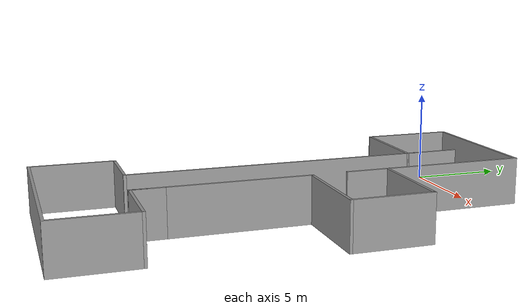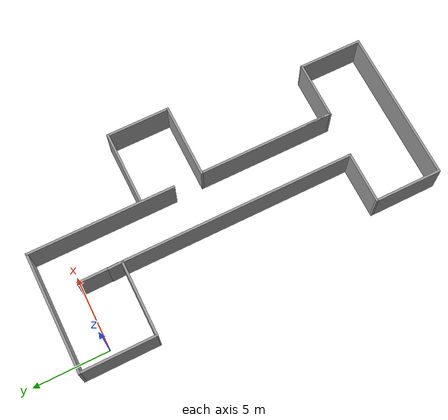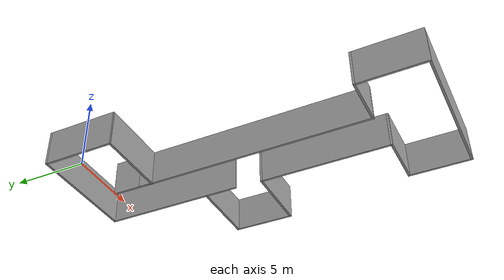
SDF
<?xml version='1.0'?>
<sdf version='1.7'>
  <model name='FBE4'>
    <pose>5.41632 -10.2467 0 0 -0 0</pose>
    <link name='Wall_28'>
      <collision name='Wall_28_Collision'>
        <geometry>
          <box>
            <size>8 0.15 2.5</size>
          </box>
        </geometry>
        <pose>0 0 1.25 0 -0 0</pose>
      </collision>
      <visual name='Wall_28_Visual'>
        <pose>0 0 1.25 0 -0 0</pose>
        <geometry>
          <box>
            <size>8 0.15 2.5</size>
          </box>
        </geometry>
        <material>
          <script>
            <uri>file://media/materials/scripts/gazebo.material</uri>
            <name>Gazebo/Grey</name>
          </script>
          <ambient>1 1 1 1</ambient>
        </material>
        <meta>
          <layer>0</layer>
        </meta>
      </visual>
      <pose>-2.46372 12.2872 0 0 -0 0</pose>
    </link>
    <link name='Wall_30'>
      <collision name='Wall_30_Collision'>
        <geometry>
          <box>
            <size>5 0.15 2.5</size>
          </box>
        </geometry>
        <pose>0 0 1.25 0 -0 0</pose>
      </collision>
      <visual name='Wall_30_Visual'>
        <pose>0 0 1.25 0 -0 0</pose>
        <geometry>
          <box>
            <size>5 0.15 2.5</size>
          </box>
        </geometry>
        <material>
          <script>
            <uri>file://media/materials/scripts/gazebo.material</uri>
            <name>Gazebo/Grey</name>
          </script>
          <ambient>1 1 1 1</ambient>
        </material>
        <meta>
          <layer>0</layer>
        </meta>
      </visual>
      <pose>-6.38872 9.86224 0 0 -0 -1.5708</pose>
    </link>
    <link name='Wall_32'>
      <collision name='Wall_32_Collision'>
        <geometry>
          <box>
            <size>2.98753 0.15 2.5</size>
          </box>
        </geometry>
        <pose>0 0 1.25 0 -0 0</pose>
      </collision>
      <visual name='Wall_32_Visual'>
        <pose>0 0 1.25 0 -0 0</pose>
        <geometry>
          <box>
            <size>2.98753 0.15 2.5</size>
          </box>
        </geometry>
        <material>
          <script>
            <uri>file://media/materials/scripts/gazebo.material</uri>
            <name>Gazebo/Grey</name>
          </script>
          <ambient>1 1 1 1</ambient>
        </material>
        <meta>
          <layer>0</layer>
        </meta>
      </visual>
      <pose>-1.48984 8.83152 0 0 -0 -1.5624</pose>
    </link>
    <link name='Wall_34'>
      <collision name='Wall_34_Collision'>
        <geometry>
          <box>
            <size>5.06085 0.15 2.5</size>
          </box>
        </geometry>
        <pose>0 0 1.25 0 -0 0</pose>
      </collision>
      <visual name='Wall_34_Visual'>
        <pose>0 0 1.25 0 -0 0</pose>
        <geometry>
          <box>
            <size>5.06085 0.15 2.5</size>
          </box>
        </geometry>
        <material>
          <script>
            <uri>file://media/materials/scripts/gazebo.material</uri>
            <name>Gazebo/Grey</name>
          </script>
          <ambient>1 1 1 1</ambient>
        </material>
        <meta>
          <layer>0</layer>
        </meta>
      </visual>
      <pose>-3.93332 7.425 0 0 -0 -0.004982</pose>
    </link>
    <link name='Wall_35'>
      <collision name='Wall_35_Collision'>
        <geometry>
          <box>
            <size>1.02491 0.15 2.5</size>
          </box>
        </geometry>
        <pose>0 0 1.25 0 -0 0</pose>
      </collision>
      <visual name='Wall_35_Visual'>
        <pose>0 0 1.25 0 -0 0</pose>
        <geometry>
          <box>
            <size>1.02491 0.15 2.5</size>
          </box>
        </geometry>
        <material>
          <script>
            <uri>file://media/materials/scripts/gazebo.material</uri>
            <name>Gazebo/Grey</name>
          </script>
          <ambient>1 1 1 1</ambient>
        </material>
        <meta>
          <layer>0</layer>
        </meta>
      </visual>
      <pose>-1.48984 7.85006 0 0 -0 1.59804</pose>
    </link>
    <link name='Wall_38'>
      <collision name='Wall_38_Collision'>
        <geometry>
          <box>
            <size>15.5 0.15 2.5</size>
          </box>
        </geometry>
        <pose>0 0 1.25 0 -0 0</pose>
      </collision>
      <visual name='Wall_38_Visual'>
        <pose>0 0 1.25 0 -0 0</pose>
        <geometry>
          <box>
            <size>15.5 0.15 2.5</size>
          </box>
        </geometry>
        <material>
          <script>
            <uri>file://media/materials/scripts/gazebo.material</uri>
            <name>Gazebo/Grey</name>
          </script>
          <ambient>1 1 1 1</ambient>
        </material>
        <meta>
          <layer>0</layer>
        </meta>
      </visual>
      <pose>-1.47792 -0.262234 0 0 -0 -1.5708</pose>
    </link>
    <link name='Wall_40'>
      <collision name='Wall_40_Collision'>
        <geometry>
          <box>
            <size>9.75 0.15 2.5</size>
          </box>
        </geometry>
        <pose>0 0 1.25 0 -0 0</pose>
      </collision>
      <visual name='Wall_40_Visual'>
        <pose>0 0 1.25 0 -0 0</pose>
        <geometry>
          <box>
            <size>9.75 0.15 2.5</size>
          </box>
        </geometry>
        <material>
          <script>
            <uri>file://media/materials/scripts/gazebo.material</uri>
            <name>Gazebo/Grey</name>
          </script>
          <ambient>1 1 1 1</ambient>
        </material>
        <meta>
          <layer>0</layer>
        </meta>
      </visual>
      <pose>1.46128 7.48724 0 0 -0 -1.5708</pose>
    </link>
    <link name='Wall_42'>
      <collision name='Wall_42_Collision'>
        <geometry>
          <box>
            <size>5 0.15 2.5</size>
          </box>
        </geometry>
        <pose>0 0 1.25 0 -0 0</pose>
      </collision>
      <visual name='Wall_42_Visual'>
        <pose>0 0 1.25 0 -0 0</pose>
        <geometry>
          <box>
            <size>5 0.15 2.5</size>
          </box>
        </geometry>
        <material>
          <script>
            <uri>file://media/materials/scripts/gazebo.material</uri>
            <name>Gazebo/Grey</name>
          </script>
          <ambient>1 1 1 1</ambient>
        </material>
        <meta>
          <layer>0</layer>
        </meta>
      </visual>
      <pose>3.96409 4.85804 0 0 -0 0</pose>
    </link>
    <link name='Wall_44'>
      <collision name='Wall_44_Collision'>
        <geometry>
          <box>
            <size>4.25 0.15 2.5</size>
          </box>
        </geometry>
        <pose>0 0 1.25 0 -0 0</pose>
      </collision>
      <visual name='Wall_44_Visual'>
        <pose>0 0 1.25 0 -0 0</pose>
        <geometry>
          <box>
            <size>4.25 0.15 2.5</size>
          </box>
        </geometry>
        <material>
          <script>
            <uri>file://media/materials/scripts/gazebo.material</uri>
            <name>Gazebo/Grey</name>
          </script>
          <ambient>1 1 1 1</ambient>
        </material>
        <meta>
          <layer>0</layer>
        </meta>
      </visual>
      <pose>6.38909 2.80804 0 0 -0 -1.5708</pose>
    </link>
    <link name='Wall_45'>
      <collision name='Wall_45_Collision'>
        <geometry>
          <box>
            <size>5 0.15 2.5</size>
          </box>
        </geometry>
        <pose>0 0 1.25 0 -0 0</pose>
      </collision>
      <visual name='Wall_45_Visual'>
        <pose>0 0 1.25 0 -0 0</pose>
        <geometry>
          <box>
            <size>5 0.15 2.5</size>
          </box>
        </geometry>
        <material>
          <script>
            <uri>file://media/materials/scripts/gazebo.material</uri>
            <name>Gazebo/Grey</name>
          </script>
          <ambient>1 1 1 1</ambient>
        </material>
        <meta>
          <layer>0</layer>
        </meta>
      </visual>
      <pose>3.96409 0.758044 0 0 -0 3.14159</pose>
    </link>
    <link name='Wall_46'>
      <collision name='Wall_46_Collision'>
        <geometry>
          <box>
            <size>9.08137 0.15 2.5</size>
          </box>
        </geometry>
        <pose>0 0 1.25 0 -0 0</pose>
      </collision>
      <visual name='Wall_46_Visual'>
        <pose>0 0 1.25 0 -0 0</pose>
        <geometry>
          <box>
            <size>9.08137 0.15 2.5</size>
          </box>
        </geometry>
        <material>
          <script>
            <uri>file://media/materials/scripts/gazebo.material</uri>
            <name>Gazebo/Grey</name>
          </script>
          <ambient>1 1 1 1</ambient>
        </material>
        <meta>
          <layer>0</layer>
        </meta>
      </visual>
      <pose>1.53909 -3.70764 0 0 -0 -1.5708</pose>
    </link>
    <link name='Wall_81'>
      <collision name='Wall_81_Collision'>
        <geometry>
          <box>
            <size>3.5 0.15 2.5</size>
          </box>
        </geometry>
        <pose>0 0 1.25 0 -0 0</pose>
      </collision>
      <visual name='Wall_81_Visual'>
        <pose>0 0 1.25 0 -0 0</pose>
        <geometry>
          <box>
            <size>3.5 0.15 2.5</size>
          </box>
        </geometry>
        <material>
          <script>
            <uri>file://media/materials/scripts/gazebo.material</uri>
            <name>Gazebo/Grey</name>
          </script>
          <ambient>1 1 1 1</ambient>
        </material>
        <meta>
          <layer>0</layer>
        </meta>
      </visual>
      <pose>-3.15293 -7.93723 0 0 -0 3.14159</pose>
    </link>
    <link name='Wall_82'>
      <collision name='Wall_82_Collision'>
        <geometry>
          <box>
            <size>4.5 0.15 2.5</size>
          </box>
        </geometry>
        <pose>0 0 1.25 0 -0 0</pose>
      </collision>
      <visual name='Wall_82_Visual'>
        <pose>0 0 1.25 0 -0 0</pose>
        <geometry>
          <box>
            <size>4.5 0.15 2.5</size>
          </box>
        </geometry>
        <material>
          <script>
            <uri>file://media/materials/scripts/gazebo.material</uri>
            <name>Gazebo/Grey</name>
          </script>
          <ambient>1 1 1 1</ambient>
        </material>
        <meta>
          <layer>0</layer>
        </meta>
      </visual>
      <pose>-4.82792 -10.1122 0 0 -0 -1.5708</pose>
    </link>
    <link name='Wall_83'>
      <collision name='Wall_83_Collision'>
        <geometry>
          <box>
            <size>10.25 0.15 2.5</size>
          </box>
        </geometry>
        <pose>0 0 1.25 0 -0 0</pose>
      </collision>
      <visual name='Wall_83_Visual'>
        <pose>0 0 1.25 0 -0 0</pose>
        <geometry>
          <box>
            <size>10.25 0.15 2.5</size>
          </box>
        </geometry>
        <material>
          <script>
            <uri>file://media/materials/scripts/gazebo.material</uri>
            <name>Gazebo/Grey</name>
          </script>
          <ambient>1 1 1 1</ambient>
        </material>
        <meta>
          <layer>0</layer>
        </meta>
      </visual>
      <pose>0.222075 -12.2872 0 0 -0 0</pose>
    </link>
    <link name='Wall_84'>
      <collision name='Wall_84_Collision'>
        <geometry>
          <box>
            <size>4.25 0.15 2.5</size>
          </box>
        </geometry>
        <pose>0 0 1.25 0 -0 0</pose>
      </collision>
      <visual name='Wall_84_Visual'>
        <pose>0 0 1.25 0 -0 0</pose>
        <geometry>
          <box>
            <size>4.25 0.15 2.5</size>
          </box>
        </geometry>
        <material>
          <script>
            <uri>file://media/materials/scripts/gazebo.material</uri>
            <name>Gazebo/Grey</name>
          </script>
          <ambient>1 1 1 1</ambient>
        </material>
        <meta>
          <layer>0</layer>
        </meta>
      </visual>
      <pose>5.27208 -10.2372 0 0 -0 1.5708</pose>
    </link>
    <link name='Wall_85'>
      <collision name='Wall_85_Collision'>
        <geometry>
          <box>
            <size>3.8836 0.15 2.5</size>
          </box>
        </geometry>
        <pose>0 0 1.25 0 -0 0</pose>
      </collision>
      <visual name='Wall_85_Visual'>
        <pose>0 0 1.25 0 -0 0</pose>
        <geometry>
          <box>
            <size>3.8836 0.15 2.5</size>
          </box>
        </geometry>
        <material>
          <script>
            <uri>file://media/materials/scripts/gazebo.material</uri>
            <name>Gazebo/Grey</name>
          </script>
          <ambient>1 1 1 1</ambient>
        </material>
        <meta>
          <layer>0</layer>
        </meta>
      </visual>
      <pose>3.40558 -8.18028 0 0 -0 3.13787</pose>
    </link>
    <link name='Wall_86'>
      <collision name='Wall_86_Collision'>
        <geometry>
          <box>
            <size>1.75 0.15 2.5</size>
          </box>
        </geometry>
        <pose>0 0 1.25 0 -0 0</pose>
      </collision>
      <visual name='Wall_86_Visual'>
        <pose>0 0 1.25 0 -0 0</pose>
        <geometry>
          <box>
            <size>1.75 0.15 2.5</size>
          </box>
        </geometry>
        <material>
          <script>
            <uri>file://media/materials/scripts/gazebo.material</uri>
            <name>Gazebo/Grey</name>
          </script>
          <ambient>1 1 1 1</ambient>
        </material>
        <meta>
          <layer>0</layer>
        </meta>
      </visual>
      <pose>1.53909 -7.37333 0 0 -0 1.5708</pose>
    </link>
    <static>1</static>
  </model>
</sdf>
